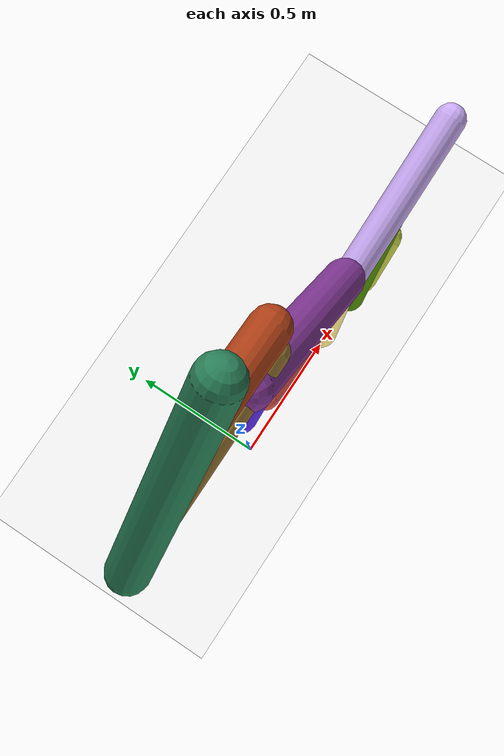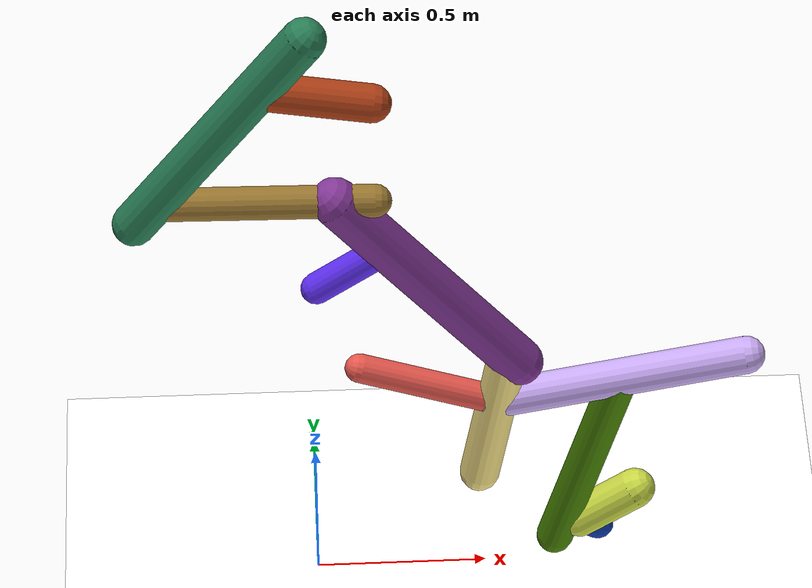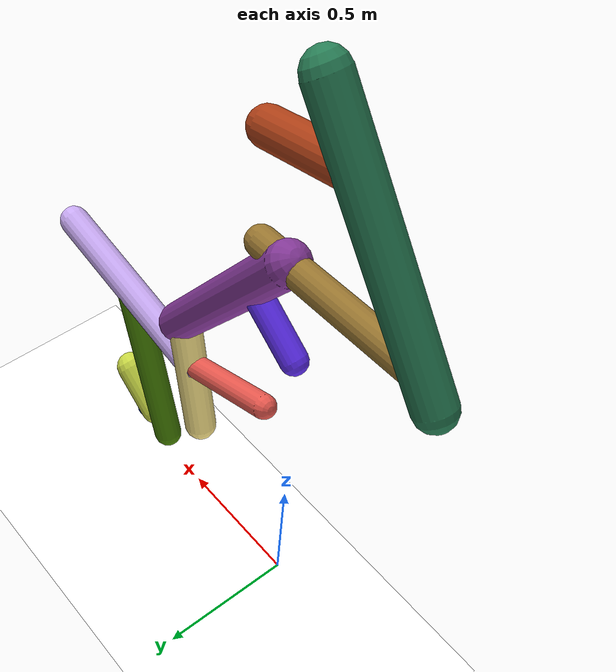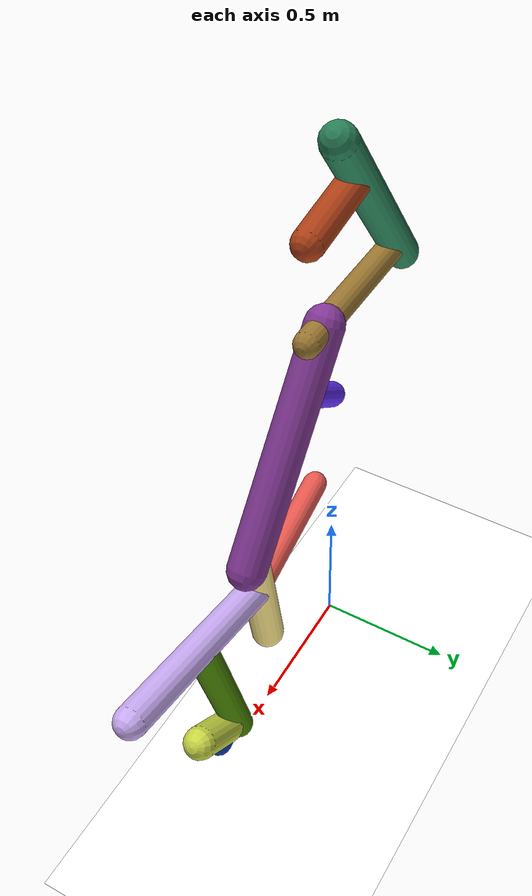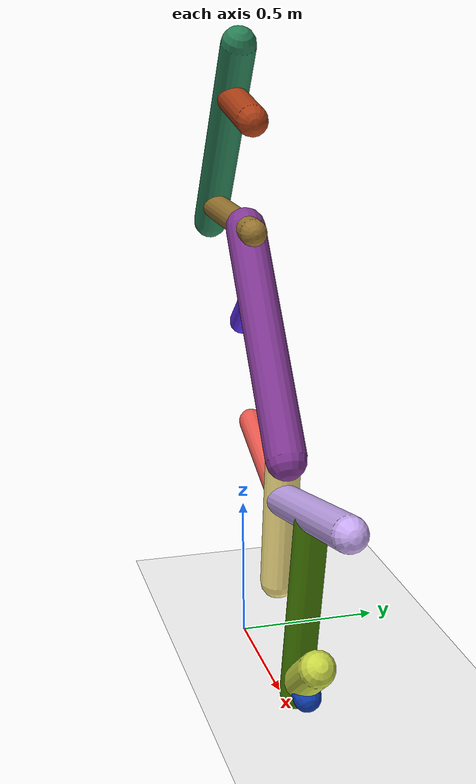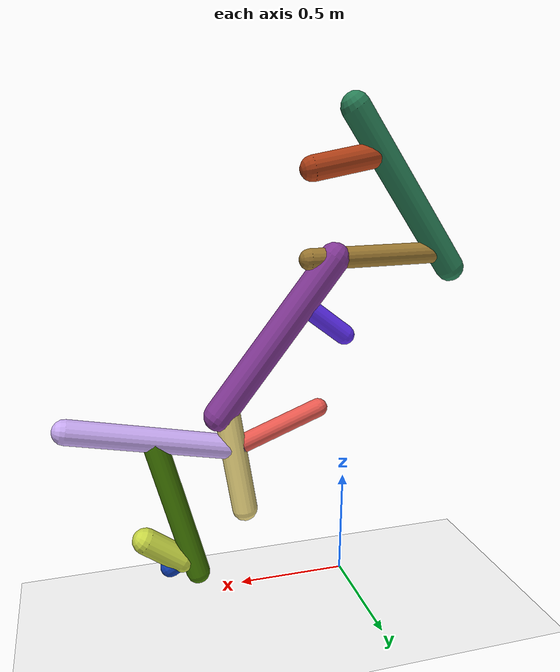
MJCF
<mujoco model="morphology">
  <option timestep="0.01"/>
  <default>
    <default class="/"/>
    <default class="0/"/>
    <default class="0/1/"/>
    <default class="0/2/"/>
    <default class="0/2/3/"/>
    <default class="0/2/3/4/"/>
    <default class="0/2/3/5/"/>
    <default class="0/2/3/5/6/"/>
    <default class="0/2/3/5/6/7/"/>
    <default class="0/2/3/5/6/7/8/"/>
    <default class="0/2/3/5/6/7/8/9/"/>
    <default class="0/2/3/5/6/7/8/9/10/"/>
  </default>
  <asset>
    <texture name="texplane" type="2d" builtin="checker" rgb1="0.10000000000000001 0.20000000000000001 0.29999999999999999" rgb2="0.20000000000000001 0.29999999999999999 0.40000000000000002" width="300" height="300"/>
    <material name="MatPlane" class="/" texture="texplane" texrepeat="20 20" specular="1" shininess="1" reflectance="0.5"/>
  </asset>
  <worldbody>
    <light name="//unnamed_light_0" class="/" directional="true" pos="0 0 1.5" dir="0 0 -1.3" cutoff="100" exponent="1" diffuse="1 1 1" specular="0.10000000000000001 0.10000000000000001 0.10000000000000001"/>
    <geom name="ground" class="/" type="plane" size="15 15 0.5" material="MatPlane" rgba="1 1 1 1"/>
    <site name="body" class="/" size="9.9999999999999995e-07 9.9999999999999995e-07 9.9999999999999995e-07" pos="0 0 2.1474524497985841"/>
    <body pos="0 0 2.1474524497985841" name="0/">
      <joint name="0/rootx/" class="/" type="slide" axis="1 0 0" limited="false" stiffness="0" armature="0" damping="0"/>
      <joint name="0/rootz/" class="/" type="slide" axis="0 0 1" limited="false" stiffness="0" armature="0" damping="0"/>
      <joint name="0/rooty/" class="/" type="hinge" axis="0 1 0" limited="false" stiffness="0" armature="0" damping="0"/>
      <geom name="0/geom" class="0/" type="capsule" contype="1" conaffinity="1" condim="3" size="0.062130601298975185" rgba="0.16041478311118129 0.50110829796523682 0.34171136798177093 1" friction="0.59999999999999998 0.10000000000000001 0.10000000000000001" fromto="0 0 0 -0.4846328472397316 0 -0.67605544920971328"/>
      <site name="0/end0" class="0/" size="0.0050000000000000001" pos="-0.4846328472397316 0 -0.67605544920971328"/>
      <site name="0/attach1" class="0/" size="9.9999999999999995e-07 9.9999999999999995e-07 9.9999999999999995e-07" pos="-0.13114539435884567 0 -0.18294583002376749"/>
      <body pos="-0.13114539435884567 0 -0.18294583002376749" name="0/1/">
        <joint name="0/1/joint/" class="0/" type="hinge" axis="0 1 0" limited="true" range="-46.088218807823857 46.088218807823857"/>
        <geom name="0/1/geom" class="0/1/" type="capsule" contype="1" conaffinity="1" condim="3" size="0.054380961132449744" rgba="0.68154486403999248 0.24797498014920094 0.087776905432252472 1" friction="0.59999999999999998 0.10000000000000001 0.10000000000000001" fromto="0 0 0 0.31092979364290096 0 -0.059648130211418127"/>
        <site name="0/1/end1" class="0/1/" size="0.0050000000000000001" pos="0.31092979364290096 0 -0.059648130211418127"/>
      </body>
      <site name="0/attach2" class="0/" size="9.9999999999999995e-07 9.9999999999999995e-07 9.9999999999999995e-07" pos="-0.43363802973726434 0 -0.60491845457479521"/>
      <body pos="-0.43363802973726434 0 -0.60491845457479521" name="0/2/">
        <geom name="0/2/geom" class="0/2/" type="capsule" contype="1" conaffinity="1" condim="3" size="0.047481356472906598" rgba="0.60339522030365977 0.46570736426384607 0.19123976577706636 1" friction="0.59999999999999998 0.10000000000000001 0.10000000000000001" fromto="0 0 0 0.61797253526959151 0 -0.011016511591066314"/>
        <site name="0/2/end2" class="0/2/" size="0.0050000000000000001" pos="0.61797253526959151 0 -0.011016511591066314"/>
        <site name="0/2/attach3" class="0/2/" size="9.9999999999999995e-07 9.9999999999999995e-07 9.9999999999999995e-07" pos="0.50686784591271261 0 -0.0090358635391461547"/>
        <body pos="0.50686784591271261 0 -0.0090358635391461547" name="0/2/3/">
          <joint name="0/2/3/joint/" class="0/2/" type="hinge" axis="0 1 0" limited="true" range="-30.783974611981545 30.783974611981545"/>
          <geom name="0/2/3/geom" class="0/2/3/" type="capsule" contype="1" conaffinity="1" condim="3" size="0.068818612289871239" rgba="0.51949433323437133 0.2222311058614147 0.5971361327557575 1" friction="0.59999999999999998 0.10000000000000001 0.10000000000000001" fromto="0 0 0 0.51962679485069674 0 -0.67237030162587363"/>
          <site name="0/2/3/end3" class="0/2/3/" size="0.0050000000000000001" pos="0.51962679485069674 0 -0.67237030162587363"/>
          <site name="0/2/3/attach4" class="0/2/3/" size="9.9999999999999995e-07 9.9999999999999995e-07 9.9999999999999995e-07" pos="0.14581051651482807 0 -0.1886712962857672"/>
          <body pos="0.14581051651482807 0 -0.1886712962857672" name="0/2/3/4/">
            <geom name="0/2/3/4/geom" class="0/2/3/4/" type="capsule" contype="1" conaffinity="1" condim="3" size="0.044948060919531796" rgba="0.37804078249630746 0.18281745910119229 0.96185137058828685 1" friction="0.59999999999999998 0.10000000000000001 0.10000000000000001" fromto="0 0 0 -0.20349556288273496 0 -0.1544968653088219"/>
            <site name="0/2/3/4/end4" class="0/2/3/4/" size="0.0050000000000000001" pos="-0.20349556288273496 0 -0.1544968653088219"/>
          </body>
          <site name="0/2/3/attach5" class="0/2/3/" size="9.9999999999999995e-07 9.9999999999999995e-07 9.9999999999999995e-07" pos="0.48835210096071446 0 -0.63190245898872432"/>
          <body pos="0.48835210096071446 0 -0.63190245898872432" name="0/2/3/5/">
            <geom name="0/2/3/5/geom" class="0/2/3/5/" type="capsule" contype="1" conaffinity="1" condim="3" size="0.058605313409821273" rgba="0.99007868436847501 0.90601731437544553 0.54081983317545124 1" friction="0.59999999999999998 0.10000000000000001 0.10000000000000001" fromto="0 0 0 -0.081247564810570383 0 -0.50555536292877257"/>
            <site name="0/2/3/5/end5" class="0/2/3/5/" size="0.0050000000000000001" pos="-0.081247564810570383 0 -0.50555536292877257"/>
            <site name="0/2/3/5/attach6" class="0/2/3/5/" size="9.9999999999999995e-07 9.9999999999999995e-07 9.9999999999999995e-07" pos="-0.032019712218281558 0 -0.19923966052558101"/>
            <body pos="-0.032019712218281558 0 -0.19923966052558101" name="0/2/3/5/6/">
              <joint name="0/2/3/5/6/joint/" class="0/2/3/5/" type="hinge" axis="0 1 0" limited="true" range="-37.722431790806198 37.722431790806198"/>
              <geom name="0/2/3/5/6/geom" class="0/2/3/5/6/" type="capsule" contype="1" conaffinity="1" condim="3" size="0.042613842907857337" rgba="0.91375239866931057 0.34784015598901075 0.30955602166339757 1" friction="0.59999999999999998 0.10000000000000001 0.10000000000000001" fromto="0 0 0 -0.39683771467805601 0 0.15328673266228598"/>
              <site name="0/2/3/5/6/end6" class="0/2/3/5/6/" size="0.0050000000000000001" pos="-0.39683771467805601 0 0.15328673266228598"/>
              <site name="0/2/3/5/6/attach7" class="0/2/3/5/6/" size="9.9999999999999995e-07 9.9999999999999995e-07 9.9999999999999995e-07" pos="-0.0068772739436767337 0 0.002656488568141567"/>
              <body pos="-0.0068772739436767337 0 0.002656488568141567" name="0/2/3/5/6/7/">
                <joint name="0/2/3/5/6/7/joint/" class="0/2/3/5/6/" type="hinge" axis="0 1 0" limited="true" range="-50.546496023570214 50.546496023570214"/>
                <geom name="0/2/3/5/6/7/geom" class="0/2/3/5/6/7/" type="capsule" contype="1" conaffinity="1" condim="3" size="0.055242573862808238" rgba="0.79745139264489484 0.67554148483265697 0.9677993408442801 1" friction="0.59999999999999998 0.10000000000000001 0.10000000000000001" fromto="0 0 0 0.7230407293382255 0 0.15162912630328007"/>
                <site name="0/2/3/5/6/7/end7" class="0/2/3/5/6/7/" size="0.0050000000000000001" pos="0.7230407293382255 0 0.15162912630328007"/>
                <site name="0/2/3/5/6/7/attach8" class="0/2/3/5/6/7/" size="9.9999999999999995e-07 9.9999999999999995e-07 9.9999999999999995e-07" pos="0.36086010439148819 0 0.075676099736002853"/>
                <body pos="0.36086010439148819 0 0.075676099736002853" name="0/2/3/5/6/7/8/">
                  <geom name="0/2/3/5/6/7/8/geom" class="0/2/3/5/6/7/8/" type="capsule" contype="1" conaffinity="1" condim="3" size="0.054427826431407457" rgba="0.28423817019496023 0.51710948423768976 0.019185543525430337 1" friction="0.59999999999999998 0.10000000000000001 0.10000000000000001" fromto="0 0 0 -0.17721305177194502 0 -0.68068848199126952"/>
                  <site name="0/2/3/5/6/7/8/end8" class="0/2/3/5/6/7/8/" size="0.0050000000000000001" pos="-0.17721305177194502 0 -0.68068848199126952"/>
                  <site name="0/2/3/5/6/7/8/attach9" class="0/2/3/5/6/7/8/" size="9.9999999999999995e-07 9.9999999999999995e-07 9.9999999999999995e-07" pos="-0.15014227446806944 0 -0.57670761757383293"/>
                  <body pos="-0.15014227446806944 0 -0.57670761757383293" name="0/2/3/5/6/7/8/9/">
                    <joint name="0/2/3/5/6/7/8/9/joint/" class="0/2/3/5/6/7/8/" type="hinge" axis="0 1 0" limited="true" range="-32.014693311049086 32.014693311049086"/>
                    <geom name="0/2/3/5/6/7/8/9/geom" class="0/2/3/5/6/7/8/9/" type="capsule" contype="1" conaffinity="1" condim="3" size="0.04633118770014677" rgba="0.06301120179437103 0.24292313228338025 0.69986239669213446 1" friction="0.59999999999999998 0.10000000000000001 0.10000000000000001" fromto="0 0 0 0.10101169971313739 0 -0.058183122929173825"/>
                    <site name="0/2/3/5/6/7/8/9/end9" class="0/2/3/5/6/7/8/9/" size="0.0050000000000000001" pos="0.10101169971313739 0 -0.058183122929173825"/>
                    <site name="0/2/3/5/6/7/8/9/attach10" class="0/2/3/5/6/7/8/9/" size="9.9999999999999995e-07 9.9999999999999995e-07 9.9999999999999995e-07" pos="0.047200749467721126 0 -0.027187811079594944"/>
                    <body pos="0.047200749467721126 0 -0.027187811079594944" name="0/2/3/5/6/7/8/9/10/">
                      <joint name="0/2/3/5/6/7/8/9/10/joint/" class="0/2/3/5/6/7/8/9/" type="hinge" axis="0 1 0" limited="true" range="-46.153689025039284 46.153689025039284"/>
                      <geom name="0/2/3/5/6/7/8/9/10/geom" class="0/2/3/5/6/7/8/9/10/" type="capsule" contype="1" conaffinity="1" condim="3" size="0.059850270276390755" rgba="0.79607431735727263 0.85545650513752391 0.2734119385069641 1" friction="0.59999999999999998 0.10000000000000001 0.10000000000000001" fromto="0 0 0 0.16025836170739349 0 0.12010867197656527"/>
                      <site name="0/2/3/5/6/7/8/9/10/end10" class="0/2/3/5/6/7/8/9/10/" size="0.0050000000000000001" pos="0.16025836170739349 0 0.12010867197656527"/>
                    </body>
                  </body>
                </body>
              </body>
            </body>
          </body>
        </body>
      </body>
      <camera name="0/side" class="0/" mode="trackcom" pos="0.40000000000000002 -4 0.20000000000000001" quat="0.70699999999999996 0.70699999999999996 0 0"/>
    </body>
  </worldbody>
  <actuator>
    <motor name="0/1/motor" class="0/1/" ctrllimited="true" ctrlrange="-1 1" gear="88" joint="0/1/joint/"/>
    <motor name="0/2/3/motor" class="0/2/3/" ctrllimited="true" ctrlrange="-1 1" gear="80" joint="0/2/3/joint/"/>
    <motor name="0/2/3/5/6/motor" class="0/2/3/5/6/" ctrllimited="true" ctrlrange="-1 1" gear="69" joint="0/2/3/5/6/joint/"/>
    <motor name="0/2/3/5/6/7/motor" class="0/2/3/5/6/7/" ctrllimited="true" ctrlrange="-1 1" gear="67" joint="0/2/3/5/6/7/joint/"/>
    <motor name="0/2/3/5/6/7/8/9/motor" class="0/2/3/5/6/7/8/9/" ctrllimited="true" ctrlrange="-1 1" gear="64" joint="0/2/3/5/6/7/8/9/joint/"/>
    <motor name="0/2/3/5/6/7/8/9/10/motor" class="0/2/3/5/6/7/8/9/10/" ctrllimited="true" ctrlrange="-1 1" gear="81" joint="0/2/3/5/6/7/8/9/10/joint/"/>
  </actuator>
  <sensor>
    <subtreelinvel name="velocity" body="0/"/>
  </sensor>
</mujoco>
